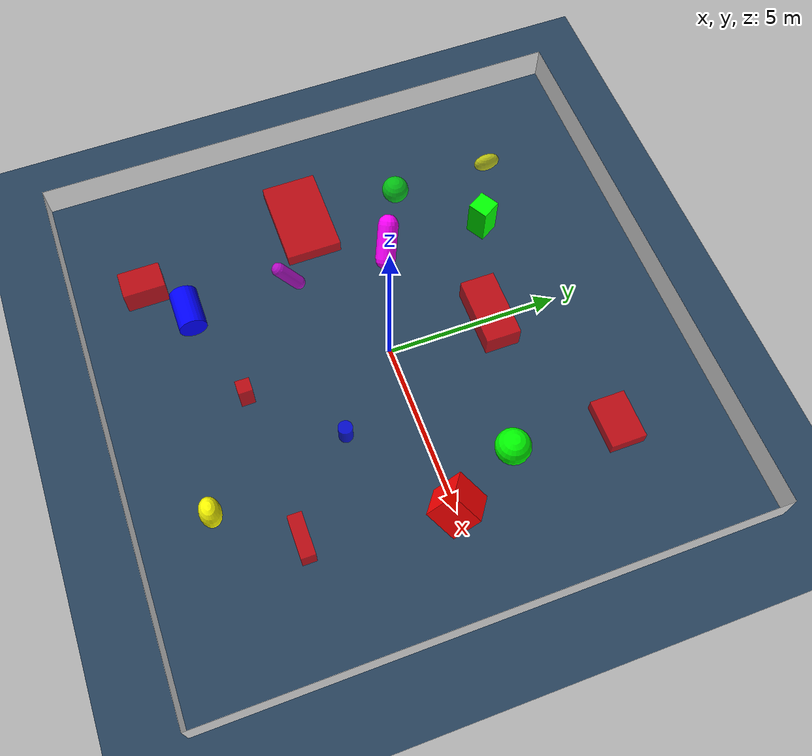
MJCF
<mujoco model="scene_demo">
  <visual>
    <headlight diffuse="0.6 0.6 0.6" ambient="0.3 0.3 0.3" specular="0 0 0"/>
    <global azimuth="120" elevation="-20"/>
  </visual>

  <asset>
    <texture type="2d" name="groundplane" builtin="checker" mark="edge" rgb1="0.2 0.3 0.4" rgb2="0.1 0.2 0.3"
      markrgb="0.8 0.8 0.8" width="300" height="300"/>
    <material name="groundplane" texture="groundplane" texuniform="true" texrepeat="5 5" reflectance="0.2"/>
  </asset>

  <worldbody>
    <light pos=" 6 0 10." dir="0 0 -1"/>
    <light pos="-6 0 10." dir="0 0 -1"/>
    <light pos="0  6 10." dir="0 0 -1"/>
    <light pos="0 -6 10." dir="0 0 -1"/>

    <geom name="ground" type="plane" size="10 10 0.1" pos="0 0 0" material="groundplane"/>
    <geom name="wall1" type="box" size="1e-3 8 0.5" pos=" 8 0 0.5" rgba="0.9 0.9 0.9 1"/>
    <geom name="wall2" type="box" size="1e-3 8 0.5" pos="-8 0 0.5" rgba="0.9 0.9 0.9 1"/>
    <geom name="wall3" type="box" size="8 1e-3 0.5" pos="0  8 0.5" rgba="0.9 0.9 0.9 1"/>
    <geom name="wall4" type="box" size="8 1e-3 0.5" pos="0 -8 0.5" rgba="0.9 0.9 0.9 1"/>

    <geom name="box1" type="box" size="0.5 0.5 0.5" pos="5 0 0.5" euler="45 -45 0" rgba="1 0 0 1"/>
    <geom name="box2" type="box" size="1.3 0.8 0.2" pos="-5 -1 0.2" rgba="1 0 0 0.7"/>
    <geom name="box3" type="box" size="0.6 0.2 0.3" pos="4.4 -4 0.3" rgba="1 0 0 0.7"/>
    <geom name="box4" type="box" size="0.2 0.2 0.4" pos="0 -4.2 0.4" rgba="1 0 0 0.7"/>
    <geom name="box5" type="box" size="0.4 0.6 0.4" pos="-4.2 -6 0.4" rgba="1 0 0 0.7"/>
    <geom name="box6" type="box" size="0.7 0.5 0.2" pos="4.2 5 0.2" rgba="1 0 0 0.7"/>
    <geom name="box7" type="box" size="1.0 0.5 0.35" pos="0 3 0.4" rgba="1 0 0 0.7"/>

    <geom name="sphere1" type="sphere" size="0.5" pos="4 2 0.5" rgba="0 1 0 1"/>
    <geom name="sphere2" type="sphere" size="0.4" pos="-5 2 0.3" rgba="0 1 0 0.7"/>

    <geom name="cylinder1" type="cylinder" size="0.4 0.6" pos="-3 -5 0.4" quat="1 0 1 0" rgba="0 0 1 1"/>
    <geom name="cylinder2" type="cylinder" size="0.2 0.3" pos="2 -2 0.3" rgba="0 0 1 0.7"/>

    <geom name="ellipsoid1" type="ellipsoid" size="0.4 0.3 0.5" pos="3 -6 0.5" rgba="1 1 0 1"/>
    <geom name="ellipsoid2" type="ellipsoid" size="0.2 0.4 0.3" pos="-5 5 0.3" rgba="1 1 0 0.7"/>

    <geom name="capsule1" type="capsule" size="0.3 0.5" pos="-3 1 0.8" quat="1 3 1 1" rgba="1 0 1 1"/>
    <geom name="capsule2" type="capsule" size="0.2 0.4" pos="-3 -2 0.6" quat="0.1 0 0.6 0.2" rgba="1 0 1 0.7"/>

    <geom name="tower1" type="box" size="0.3 0.3 0.6" pos="-3 4 0.6" euler="0 0 30" rgba="0 1 0 1"/>

  </worldbody>

</mujoco>
